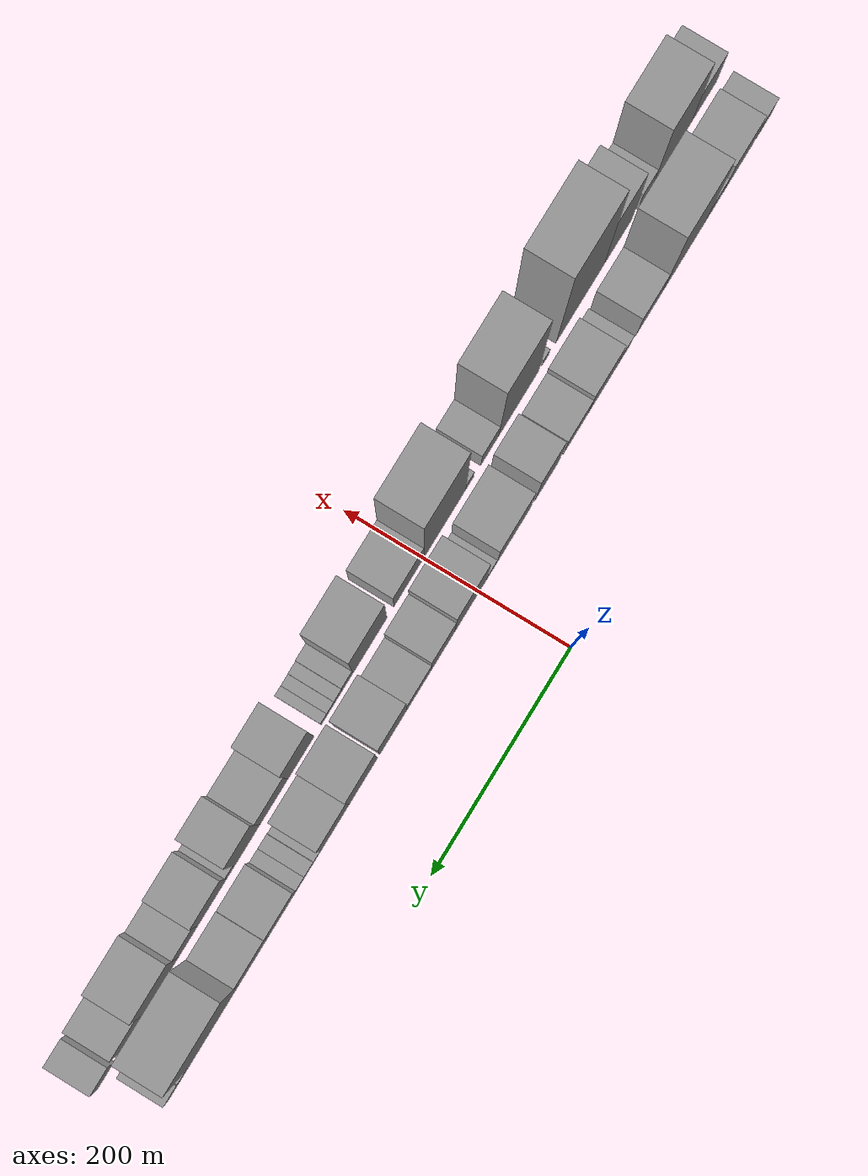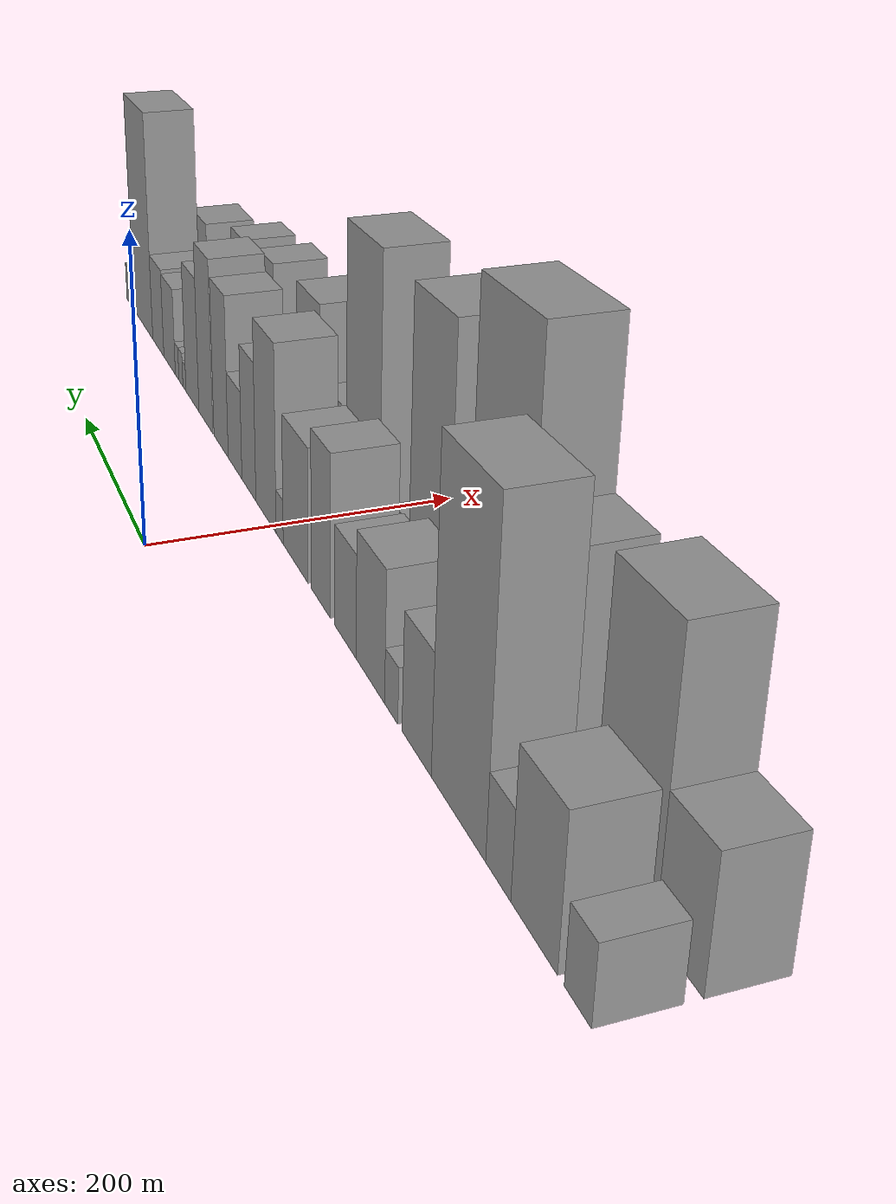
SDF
<sdf version="1.6">
 <world name="default">
  <scene>
   <sky><clouds><speed>12</speed></clouds></sky>
   <ambient>0.4 0.4 0.4 1</ambient>
   <background>0.7 0.7 0.7 1</background>
   <shadows>1</shadows>
  </scene>
  <gravity>0 0 -9.8066</gravity>
  <magnetic_field>6e-06 2.3e-05 -4.2e-05</magnetic_field>
  <physics default="0" name="default_physics" type="ode">
   <ode>
    <solver>
     <type>quick</type>
     <iters>10</iters>
     <sor>1.0</sor>
     <use_dynamic_moi_rescaling>0</use_dynamic_moi_rescaling>
    </solver>
    <constraints>
     <cfm>0</cfm>
     <erp>0.2</erp>
     <contact_max_correcting_vel>100</contact_max_correcting_vel>
     <contact_surface_layer>0.001</contact_surface_layer>
    </constraints>
   </ode>
   <max_step_size>0.004</max_step_size>
   <real_time_factor>1</real_time_factor>
   <real_time_update_rate>250</real_time_update_rate>
  </physics>
  <light name="sun" type="directional">
   <pose>0 0 10 0 0 0</pose>
   <diffuse>0.8 0.8 0.8 1</diffuse>
   <specular>0.2 0.2 0.2 1</specular>
   <attenuation>
    <range>1000</range>
    <constant>0.9</constant>
    <linear>0.01</linear>
    <quadratic>0.001</quadratic>
   </attenuation>
   <direction>-0.5 0.1 -0.9</direction>
  </light>
  <model name="building_1">
   <static>1</static>
   <pose>100.0000 -421.2113 0 0.000000 0.000000 0.000000</pose>
   <link name="link">
    <pose>0 0 21.00 0 0 0</pose>
    <collision name="collision"><geometry><box><size>40.0000 23.5775 42.0000</size></box></geometry></collision>
    <visual name="visual">
     <cast_shadows>0</cast_shadows>
     <geometry><box><size>40.0000 23.5775 42.0000</size></box></geometry>
     <material>
      <script>
       <uri>model://grey_wall/materials/scripts</uri>
       <uri>model://grey_wall/materials/textures</uri>
       <name>vrc/grey_wall</name>
      </script>
     </material>
    </visual>
   </link>
  </model>
  <model name="building_2">
   <static>1</static>
   <pose>100.0000 -380.9293 0 0.000000 0.000000 0.000000</pose>
   <link name="link">
    <pose>0 0 40.50 0 0 0</pose>
    <collision name="collision"><geometry><box><size>40.0000 44.9863 81.0000</size></box></geometry></collision>
    <visual name="visual">
     <cast_shadows>0</cast_shadows>
     <geometry><box><size>40.0000 44.9863 81.0000</size></box></geometry>
     <material>
      <script>
       <uri>model://grey_wall/materials/scripts</uri>
       <uri>model://grey_wall/materials/textures</uri>
       <name>vrc/grey_wall</name>
      </script>
     </material>
    </visual>
   </link>
  </model>
  <model name="building_3">
   <static>1</static>
   <pose>100.0000 -345.1458 0 0.000000 0.000000 0.000000</pose>
   <link name="link">
    <pose>0 0 24.00 0 0 0</pose>
    <collision name="collision"><geometry><box><size>40.0000 26.5807 48.0000</size></box></geometry></collision>
    <visual name="visual">
     <cast_shadows>0</cast_shadows>
     <geometry><box><size>40.0000 26.5807 48.0000</size></box></geometry>
     <material>
      <script>
       <uri>model://grey_wall/materials/scripts</uri>
       <uri>model://grey_wall/materials/textures</uri>
       <name>vrc/grey_wall</name>
      </script>
     </material>
    </visual>
   </link>
  </model>
  <model name="building_4">
   <static>1</static>
   <pose>100.0000 -299.7064 0 0.000000 0.000000 0.000000</pose>
   <link name="link">
    <pose>0 0 91.50 0 0 0</pose>
    <collision name="collision"><geometry><box><size>40.0000 64.2981 183.0000</size></box></geometry></collision>
    <visual name="visual">
     <cast_shadows>0</cast_shadows>
     <geometry><box><size>40.0000 64.2981 183.0000</size></box></geometry>
     <material>
      <script>
       <uri>model://grey_wall/materials/scripts</uri>
       <uri>model://grey_wall/materials/textures</uri>
       <name>vrc/grey_wall</name>
      </script>
     </material>
    </visual>
   </link>
  </model>
  <model name="building_5">
   <static>1</static>
   <pose>100.0000 -248.0408 0 0.000000 0.000000 0.000000</pose>
   <link name="link">
    <pose>0 0 34.50 0 0 0</pose>
    <collision name="collision"><geometry><box><size>40.0000 39.0332 69.0000</size></box></geometry></collision>
    <visual name="visual">
     <cast_shadows>0</cast_shadows>
     <geometry><box><size>40.0000 39.0332 69.0000</size></box></geometry>
     <material>
      <script>
       <uri>model://grey_wall/materials/scripts</uri>
       <uri>model://grey_wall/materials/textures</uri>
       <name>vrc/grey_wall</name>
      </script>
     </material>
    </visual>
   </link>
  </model>
  <model name="building_6">
   <static>1</static>
   <pose>100.0000 -212.9553 0 0.000000 0.000000 0.000000</pose>
   <link name="link">
    <pose>0 0 16.50 0 0 0</pose>
    <collision name="collision"><geometry><box><size>40.0000 19.1377 33.0000</size></box></geometry></collision>
    <visual name="visual">
     <cast_shadows>0</cast_shadows>
     <geometry><box><size>40.0000 19.1377 33.0000</size></box></geometry>
     <material>
      <script>
       <uri>model://grey_wall/materials/scripts</uri>
       <uri>model://grey_wall/materials/textures</uri>
       <name>vrc/grey_wall</name>
      </script>
     </material>
    </visual>
   </link>
  </model>
  <model name="building_7">
   <static>1</static>
   <pose>100.0000 -181.2619 0 0.000000 0.000000 0.000000</pose>
   <link name="link">
    <pose>0 0 39.00 0 0 0</pose>
    <collision name="collision"><geometry><box><size>40.0000 44.2490 78.0000</size></box></geometry></collision>
    <visual name="visual">
     <cast_shadows>0</cast_shadows>
     <geometry><box><size>40.0000 44.2490 78.0000</size></box></geometry>
     <material>
      <script>
       <uri>model://grey_wall/materials/scripts</uri>
       <uri>model://grey_wall/materials/textures</uri>
       <name>vrc/grey_wall</name>
      </script>
     </material>
    </visual>
   </link>
  </model>
  <model name="building_8">
   <static>1</static>
   <pose>100.0000 -141.0431 0 0.000000 0.000000 0.000000</pose>
   <link name="link">
    <pose>0 0 31.50 0 0 0</pose>
    <collision name="collision"><geometry><box><size>40.0000 36.1888 63.0000</size></box></geometry></collision>
    <visual name="visual">
     <cast_shadows>0</cast_shadows>
     <geometry><box><size>40.0000 36.1888 63.0000</size></box></geometry>
     <material>
      <script>
       <uri>model://grey_wall/materials/scripts</uri>
       <uri>model://grey_wall/materials/textures</uri>
       <name>vrc/grey_wall</name>
      </script>
     </material>
    </visual>
   </link>
  </model>
  <model name="building_9">
   <static>1</static>
   <pose>100.0000 -98.4769 0 0.000000 0.000000 0.000000</pose>
   <link name="link">
    <pose>0 0 51.00 0 0 0</pose>
    <collision name="collision"><geometry><box><size>40.0000 34.9436 102.0000</size></box></geometry></collision>
    <visual name="visual">
     <cast_shadows>0</cast_shadows>
     <geometry><box><size>40.0000 34.9436 102.0000</size></box></geometry>
     <material>
      <script>
       <uri>model://grey_wall/materials/scripts</uri>
       <uri>model://grey_wall/materials/textures</uri>
       <name>vrc/grey_wall</name>
      </script>
     </material>
    </visual>
   </link>
  </model>
  <model name="building_10">
   <static>1</static>
   <pose>100.0000 -49.9872 0 0.000000 0.000000 0.000000</pose>
   <link name="link">
    <pose>0 0 43.50 0 0 0</pose>
    <collision name="collision"><geometry><box><size>40.0000 50.0358 87.0000</size></box></geometry></collision>
    <visual name="visual">
     <cast_shadows>0</cast_shadows>
     <geometry><box><size>40.0000 50.0358 87.0000</size></box></geometry>
     <material>
      <script>
       <uri>model://grey_wall/materials/scripts</uri>
       <uri>model://grey_wall/materials/textures</uri>
       <name>vrc/grey_wall</name>
      </script>
     </material>
    </visual>
   </link>
  </model>
  <model name="building_11">
   <static>1</static>
   <pose>100.0000 -17.4245 0 0.000000 0.000000 0.000000</pose>
   <link name="link">
    <pose>0 0 15.00 0 0 0</pose>
    <collision name="collision"><geometry><box><size>40.0000 15.0897 30.0000</size></box></geometry></collision>
    <visual name="visual">
     <cast_shadows>0</cast_shadows>
     <geometry><box><size>40.0000 15.0897 30.0000</size></box></geometry>
     <material>
      <script>
       <uri>model://grey_wall/materials/scripts</uri>
       <uri>model://grey_wall/materials/textures</uri>
       <name>vrc/grey_wall</name>
      </script>
     </material>
    </visual>
   </link>
  </model>
  <model name="building_12">
   <static>1</static>
   <pose>100.0000 12.8642 0 0.000000 0.000000 0.000000</pose>
   <link name="link">
    <pose>0 0 63.00 0 0 0</pose>
    <collision name="collision"><geometry><box><size>40.0000 45.4876 126.0000</size></box></geometry></collision>
    <visual name="visual">
     <cast_shadows>0</cast_shadows>
     <geometry><box><size>40.0000 45.4876 126.0000</size></box></geometry>
     <material>
      <script>
       <uri>model://grey_wall/materials/scripts</uri>
       <uri>model://grey_wall/materials/textures</uri>
       <name>vrc/grey_wall</name>
      </script>
     </material>
    </visual>
   </link>
  </model>
  <model name="building_13">
   <static>1</static>
   <pose>100.0000 52.4269 0 0.000000 0.000000 0.000000</pose>
   <link name="link">
    <pose>0 0 48.00 0 0 0</pose>
    <collision name="collision"><geometry><box><size>40.0000 33.6378 96.0000</size></box></geometry></collision>
    <visual name="visual">
     <cast_shadows>0</cast_shadows>
     <geometry><box><size>40.0000 33.6378 96.0000</size></box></geometry>
     <material>
      <script>
       <uri>model://grey_wall/materials/scripts</uri>
       <uri>model://grey_wall/materials/textures</uri>
       <name>vrc/grey_wall</name>
      </script>
     </material>
    </visual>
   </link>
  </model>
  <model name="building_14">
   <static>1</static>
   <pose>100.0000 86.7150 0 0.000000 0.000000 0.000000</pose>
   <link name="link">
    <pose>0 0 31.50 0 0 0</pose>
    <collision name="collision"><geometry><box><size>40.0000 34.9383 63.0000</size></box></geometry></collision>
    <visual name="visual">
     <cast_shadows>0</cast_shadows>
     <geometry><box><size>40.0000 34.9383 63.0000</size></box></geometry>
     <material>
      <script>
       <uri>model://grey_wall/materials/scripts</uri>
       <uri>model://grey_wall/materials/textures</uri>
       <name>vrc/grey_wall</name>
      </script>
     </material>
    </visual>
   </link>
  </model>
  <model name="building_15">
   <static>1</static>
   <pose>100.0000 123.4704 0 0.000000 0.000000 0.000000</pose>
   <link name="link">
    <pose>0 0 58.50 0 0 0</pose>
    <collision name="collision"><geometry><box><size>40.0000 38.5726 117.0000</size></box></geometry></collision>
    <visual name="visual">
     <cast_shadows>0</cast_shadows>
     <geometry><box><size>40.0000 38.5726 117.0000</size></box></geometry>
     <material>
      <script>
       <uri>model://grey_wall/materials/scripts</uri>
       <uri>model://grey_wall/materials/textures</uri>
       <name>vrc/grey_wall</name>
      </script>
     </material>
    </visual>
   </link>
  </model>
  <model name="building_16">
   <static>1</static>
   <pose>100.0000 165.8754 0 0.000000 0.000000 0.000000</pose>
   <link name="link">
    <pose>0 0 64.50 0 0 0</pose>
    <collision name="collision"><geometry><box><size>40.0000 40.2373 129.0000</size></box></geometry></collision>
    <visual name="visual">
     <cast_shadows>0</cast_shadows>
     <geometry><box><size>40.0000 40.2373 129.0000</size></box></geometry>
     <material>
      <script>
       <uri>model://grey_wall/materials/scripts</uri>
       <uri>model://grey_wall/materials/textures</uri>
       <name>vrc/grey_wall</name>
      </script>
     </material>
    </visual>
   </link>
  </model>
  <model name="building_17">
   <static>1</static>
   <pose>100.0000 206.0309 0 0.000000 0.000000 0.000000</pose>
   <link name="link">
    <pose>0 0 51.00 0 0 0</pose>
    <collision name="collision"><geometry><box><size>40.0000 40.0737 102.0000</size></box></geometry></collision>
    <visual name="visual">
     <cast_shadows>0</cast_shadows>
     <geometry><box><size>40.0000 40.0737 102.0000</size></box></geometry>
     <material>
      <script>
       <uri>model://grey_wall/materials/scripts</uri>
       <uri>model://grey_wall/materials/textures</uri>
       <name>vrc/grey_wall</name>
      </script>
     </material>
    </visual>
   </link>
  </model>
  <model name="building_18">
   <static>1</static>
   <pose>100.0000 231.0367 0 0.000000 0.000000 0.000000</pose>
   <link name="link">
    <pose>0 0 10.50 0 0 0</pose>
    <collision name="collision"><geometry><box><size>40.0000 9.9379 21.0000</size></box></geometry></collision>
    <visual name="visual">
     <cast_shadows>0</cast_shadows>
     <geometry><box><size>40.0000 9.9379 21.0000</size></box></geometry>
     <material>
      <script>
       <uri>model://grey_wall/materials/scripts</uri>
       <uri>model://grey_wall/materials/textures</uri>
       <name>vrc/grey_wall</name>
      </script>
     </material>
    </visual>
   </link>
  </model>
  <model name="building_19">
   <static>1</static>
   <pose>100.0000 242.3863 0 0.000000 0.000000 0.000000</pose>
   <link name="link">
    <pose>0 0 13.50 0 0 0</pose>
    <collision name="collision"><geometry><box><size>40.0000 12.7612 27.0000</size></box></geometry></collision>
    <visual name="visual">
     <cast_shadows>0</cast_shadows>
     <geometry><box><size>40.0000 12.7612 27.0000</size></box></geometry>
     <material>
      <script>
       <uri>model://grey_wall/materials/scripts</uri>
       <uri>model://grey_wall/materials/textures</uri>
       <name>vrc/grey_wall</name>
      </script>
     </material>
    </visual>
   </link>
  </model>
  <model name="building_20">
   <static>1</static>
   <pose>100.0000 254.7174 0 0.000000 0.000000 0.000000</pose>
   <link name="link">
    <pose>0 0 13.50 0 0 0</pose>
    <collision name="collision"><geometry><box><size>40.0000 11.9011 27.0000</size></box></geometry></collision>
    <visual name="visual">
     <cast_shadows>0</cast_shadows>
     <geometry><box><size>40.0000 11.9011 27.0000</size></box></geometry>
     <material>
      <script>
       <uri>model://grey_wall/materials/scripts</uri>
       <uri>model://grey_wall/materials/textures</uri>
       <name>vrc/grey_wall</name>
      </script>
     </material>
    </visual>
   </link>
  </model>
  <model name="building_21">
   <static>1</static>
   <pose>100.0000 280.2527 0 0.000000 0.000000 0.000000</pose>
   <link name="link">
    <pose>0 0 34.50 0 0 0</pose>
    <collision name="collision"><geometry><box><size>40.0000 39.1695 69.0000</size></box></geometry></collision>
    <visual name="visual">
     <cast_shadows>0</cast_shadows>
     <geometry><box><size>40.0000 39.1695 69.0000</size></box></geometry>
     <material>
      <script>
       <uri>model://grey_wall/materials/scripts</uri>
       <uri>model://grey_wall/materials/textures</uri>
       <name>vrc/grey_wall</name>
      </script>
     </material>
    </visual>
   </link>
  </model>
  <model name="building_22">
   <static>1</static>
   <pose>100.0000 319.8653 0 0.000000 0.000000 0.000000</pose>
   <link name="link">
    <pose>0 0 36.00 0 0 0</pose>
    <collision name="collision"><geometry><box><size>40.0000 40.0557 72.0000</size></box></geometry></collision>
    <visual name="visual">
     <cast_shadows>0</cast_shadows>
     <geometry><box><size>40.0000 40.0557 72.0000</size></box></geometry>
     <material>
      <script>
       <uri>model://grey_wall/materials/scripts</uri>
       <uri>model://grey_wall/materials/textures</uri>
       <name>vrc/grey_wall</name>
      </script>
     </material>
    </visual>
   </link>
  </model>
  <model name="building_23">
   <static>1</static>
   <pose>100.0000 376.1777 0 0.000000 0.000000 0.000000</pose>
   <link name="link">
    <pose>0 0 93.00 0 0 0</pose>
    <collision name="collision"><geometry><box><size>40.0000 72.5691 186.0000</size></box></geometry></collision>
    <visual name="visual">
     <cast_shadows>0</cast_shadows>
     <geometry><box><size>40.0000 72.5691 186.0000</size></box></geometry>
     <material>
      <script>
       <uri>model://grey_wall/materials/scripts</uri>
       <uri>model://grey_wall/materials/textures</uri>
       <name>vrc/grey_wall</name>
      </script>
     </material>
    </visual>
   </link>
  </model>
  <model name="building_24">
   <static>1</static>
   <pose>100.0000 418.3078 0 0.000000 0.000000 0.000000</pose>
   <link name="link">
    <pose>0 0 13.50 0 0 0</pose>
    <collision name="collision"><geometry><box><size>40.0000 11.6911 27.0000</size></box></geometry></collision>
    <visual name="visual">
     <cast_shadows>0</cast_shadows>
     <geometry><box><size>40.0000 11.6911 27.0000</size></box></geometry>
     <material>
      <script>
       <uri>model://grey_wall/materials/scripts</uri>
       <uri>model://grey_wall/materials/textures</uri>
       <name>vrc/grey_wall</name>
      </script>
     </material>
    </visual>
   </link>
  </model>
  <model name="building_25">
   <static>1</static>
   <pose>100.0000 433.3633 0 0.000000 0.000000 0.000000</pose>
   <link name="link">
    <pose>0 0 16.50 0 0 0</pose>
    <collision name="collision"><geometry><box><size>40.0000 18.4199 33.0000</size></box></geometry></collision>
    <visual name="visual">
     <cast_shadows>0</cast_shadows>
     <geometry><box><size>40.0000 18.4199 33.0000</size></box></geometry>
     <material>
      <script>
       <uri>model://grey_wall/materials/scripts</uri>
       <uri>model://grey_wall/materials/textures</uri>
       <name>vrc/grey_wall</name>
      </script>
     </material>
    </visual>
   </link>
  </model>
  <model name="building_26">
   <static>1</static>
   <pose>149.0000 -413.7615 0 0.000000 0.000000 0.000000</pose>
   <link name="link">
    <pose>0 0 36.00 0 0 0</pose>
    <collision name="collision"><geometry><box><size>40.0000 38.4770 72.0000</size></box></geometry></collision>
    <visual name="visual">
     <cast_shadows>0</cast_shadows>
     <geometry><box><size>40.0000 38.4770 72.0000</size></box></geometry>
     <material>
      <script>
       <uri>model://grey_wall/materials/scripts</uri>
       <uri>model://grey_wall/materials/textures</uri>
       <name>vrc/grey_wall</name>
      </script>
     </material>
    </visual>
   </link>
  </model>
  <model name="building_27">
   <static>1</static>
   <pose>149.0000 -365.9560 0 0.000000 0.000000 0.000000</pose>
   <link name="link">
    <pose>0 0 75.00 0 0 0</pose>
    <collision name="collision"><geometry><box><size>40.0000 57.1341 150.0000</size></box></geometry></collision>
    <visual name="visual">
     <cast_shadows>0</cast_shadows>
     <geometry><box><size>40.0000 57.1341 150.0000</size></box></geometry>
     <material>
      <script>
       <uri>model://grey_wall/materials/scripts</uri>
       <uri>model://grey_wall/materials/textures</uri>
       <name>vrc/grey_wall</name>
      </script>
     </material>
    </visual>
   </link>
  </model>
  <model name="building_28">
   <static>1</static>
   <pose>149.0000 -326.1045 0 0.000000 0.000000 0.000000</pose>
   <link name="link">
    <pose>0 0 22.50 0 0 0</pose>
    <collision name="collision"><geometry><box><size>40.0000 22.5690 45.0000</size></box></geometry></collision>
    <visual name="visual">
     <cast_shadows>0</cast_shadows>
     <geometry><box><size>40.0000 22.5690 45.0000</size></box></geometry>
     <material>
      <script>
       <uri>model://grey_wall/materials/scripts</uri>
       <uri>model://grey_wall/materials/textures</uri>
       <name>vrc/grey_wall</name>
      </script>
     </material>
    </visual>
   </link>
  </model>
  <model name="building_29">
   <static>1</static>
   <pose>149.0000 -284.9412 0 0.000000 0.000000 0.000000</pose>
   <link name="link">
    <pose>0 0 67.50 0 0 0</pose>
    <collision name="collision"><geometry><box><size>40.0000 41.7576 135.0000</size></box></geometry></collision>
    <visual name="visual">
     <cast_shadows>0</cast_shadows>
     <geometry><box><size>40.0000 41.7576 135.0000</size></box></geometry>
     <material>
      <script>
       <uri>model://grey_wall/materials/scripts</uri>
       <uri>model://grey_wall/materials/textures</uri>
       <name>vrc/grey_wall</name>
      </script>
     </material>
    </visual>
   </link>
  </model>
  <model name="building_30">
   <static>1</static>
   <pose>149.0000 -228.6244 0 0.000000 0.000000 0.000000</pose>
   <link name="link">
    <pose>0 0 112.50 0 0 0</pose>
    <collision name="collision"><geometry><box><size>40.0000 70.8759 225.0000</size></box></geometry></collision>
    <visual name="visual">
     <cast_shadows>0</cast_shadows>
     <geometry><box><size>40.0000 70.8759 225.0000</size></box></geometry>
     <material>
      <script>
       <uri>model://grey_wall/materials/scripts</uri>
       <uri>model://grey_wall/materials/textures</uri>
       <name>vrc/grey_wall</name>
      </script>
     </material>
    </visual>
   </link>
  </model>
  <model name="building_31">
   <static>1</static>
   <pose>149.0000 -178.0951 0 0.000000 0.000000 0.000000</pose>
   <link name="link">
    <pose>0 0 10.50 0 0 0</pose>
    <collision name="collision"><geometry><box><size>40.0000 10.1827 21.0000</size></box></geometry></collision>
    <visual name="visual">
     <cast_shadows>0</cast_shadows>
     <geometry><box><size>40.0000 10.1827 21.0000</size></box></geometry>
     <material>
      <script>
       <uri>model://grey_wall/materials/scripts</uri>
       <uri>model://grey_wall/materials/textures</uri>
       <name>vrc/grey_wall</name>
      </script>
     </material>
    </visual>
   </link>
  </model>
  <model name="building_32">
   <static>1</static>
   <pose>149.0000 -138.4369 0 0.000000 0.000000 0.000000</pose>
   <link name="link">
    <pose>0 0 96.00 0 0 0</pose>
    <collision name="collision"><geometry><box><size>40.0000 59.1337 192.0000</size></box></geometry></collision>
    <visual name="visual">
     <cast_shadows>0</cast_shadows>
     <geometry><box><size>40.0000 59.1337 192.0000</size></box></geometry>
     <material>
      <script>
       <uri>model://grey_wall/materials/scripts</uri>
       <uri>model://grey_wall/materials/textures</uri>
       <name>vrc/grey_wall</name>
      </script>
     </material>
    </visual>
   </link>
  </model>
  <model name="building_33">
   <static>1</static>
   <pose>149.0000 -95.9197 0 0.000000 0.000000 0.000000</pose>
   <link name="link">
    <pose>0 0 24.00 0 0 0</pose>
    <collision name="collision"><geometry><box><size>40.0000 25.9006 48.0000</size></box></geometry></collision>
    <visual name="visual">
     <cast_shadows>0</cast_shadows>
     <geometry><box><size>40.0000 25.9006 48.0000</size></box></geometry>
     <material>
      <script>
       <uri>model://grey_wall/materials/scripts</uri>
       <uri>model://grey_wall/materials/textures</uri>
       <name>vrc/grey_wall</name>
      </script>
     </material>
    </visual>
   </link>
  </model>
  <model name="building_34">
   <static>1</static>
   <pose>149.0000 -66.9706 0 0.000000 0.000000 0.000000</pose>
   <link name="link">
    <pose>0 0 13.50 0 0 0</pose>
    <collision name="collision"><geometry><box><size>40.0000 11.9977 27.0000</size></box></geometry></collision>
    <visual name="visual">
     <cast_shadows>0</cast_shadows>
     <geometry><box><size>40.0000 11.9977 27.0000</size></box></geometry>
     <material>
      <script>
       <uri>model://grey_wall/materials/scripts</uri>
       <uri>model://grey_wall/materials/textures</uri>
       <name>vrc/grey_wall</name>
      </script>
     </material>
    </visual>
   </link>
  </model>
  <model name="building_35">
   <static>1</static>
   <pose>149.0000 -30.5515 0 0.000000 0.000000 0.000000</pose>
   <link name="link">
    <pose>0 0 97.50 0 0 0</pose>
    <collision name="collision"><geometry><box><size>40.0000 60.8404 195.0000</size></box></geometry></collision>
    <visual name="visual">
     <cast_shadows>0</cast_shadows>
     <geometry><box><size>40.0000 60.8404 195.0000</size></box></geometry>
     <material>
      <script>
       <uri>model://grey_wall/materials/scripts</uri>
       <uri>model://grey_wall/materials/textures</uri>
       <name>vrc/grey_wall</name>
      </script>
     </material>
    </visual>
   </link>
  </model>
  <model name="building_36">
   <static>1</static>
   <pose>149.0000 21.3845 0 0.000000 0.000000 0.000000</pose>
   <link name="link">
    <pose>0 0 36.00 0 0 0</pose>
    <collision name="collision"><geometry><box><size>40.0000 43.0317 72.0000</size></box></geometry></collision>
    <visual name="visual">
     <cast_shadows>0</cast_shadows>
     <geometry><box><size>40.0000 43.0317 72.0000</size></box></geometry>
     <material>
      <script>
       <uri>model://grey_wall/materials/scripts</uri>
       <uri>model://grey_wall/materials/textures</uri>
       <name>vrc/grey_wall</name>
      </script>
     </material>
    </visual>
   </link>
  </model>
  <model name="building_37">
   <static>1</static>
   <pose>149.0000 77.2973 0 0.000000 0.000000 0.000000</pose>
   <link name="link">
    <pose>0 0 61.50 0 0 0</pose>
    <collision name="collision"><geometry><box><size>40.0000 48.7939 123.0000</size></box></geometry></collision>
    <visual name="visual">
     <cast_shadows>0</cast_shadows>
     <geometry><box><size>40.0000 48.7939 123.0000</size></box></geometry>
     <material>
      <script>
       <uri>model://grey_wall/materials/scripts</uri>
       <uri>model://grey_wall/materials/textures</uri>
       <name>vrc/grey_wall</name>
      </script>
     </material>
    </visual>
   </link>
  </model>
  <model name="building_38">
   <static>1</static>
   <pose>149.0000 109.2500 0 0.000000 0.000000 0.000000</pose>
   <link name="link">
    <pose>0 0 15.00 0 0 0</pose>
    <collision name="collision"><geometry><box><size>40.0000 15.1116 30.0000</size></box></geometry></collision>
    <visual name="visual">
     <cast_shadows>0</cast_shadows>
     <geometry><box><size>40.0000 15.1116 30.0000</size></box></geometry>
     <material>
      <script>
       <uri>model://grey_wall/materials/scripts</uri>
       <uri>model://grey_wall/materials/textures</uri>
       <name>vrc/grey_wall</name>
      </script>
     </material>
    </visual>
   </link>
  </model>
  <model name="building_39">
   <static>1</static>
   <pose>149.0000 122.2734 0 0.000000 0.000000 0.000000</pose>
   <link name="link">
    <pose>0 0 12.00 0 0 0</pose>
    <collision name="collision"><geometry><box><size>40.0000 10.9351 24.0000</size></box></geometry></collision>
    <visual name="visual">
     <cast_shadows>0</cast_shadows>
     <geometry><box><size>40.0000 10.9351 24.0000</size></box></geometry>
     <material>
      <script>
       <uri>model://grey_wall/materials/scripts</uri>
       <uri>model://grey_wall/materials/textures</uri>
       <name>vrc/grey_wall</name>
      </script>
     </material>
    </visual>
   </link>
  </model>
  <model name="building_40">
   <static>1</static>
   <pose>149.0000 132.8944 0 0.000000 0.000000 0.000000</pose>
   <link name="link">
    <pose>0 0 10.50 0 0 0</pose>
    <collision name="collision"><geometry><box><size>40.0000 10.3069 21.0000</size></box></geometry></collision>
    <visual name="visual">
     <cast_shadows>0</cast_shadows>
     <geometry><box><size>40.0000 10.3069 21.0000</size></box></geometry>
     <material>
      <script>
       <uri>model://grey_wall/materials/scripts</uri>
       <uri>model://grey_wall/materials/textures</uri>
       <name>vrc/grey_wall</name>
      </script>
     </material>
    </visual>
   </link>
  </model>
  <model name="building_41">
   <static>1</static>
   <pose>149.0000 142.4673 0 0.000000 0.000000 0.000000</pose>
   <link name="link">
    <pose>0 0 10.50 0 0 0</pose>
    <collision name="collision"><geometry><box><size>40.0000 8.8389 21.0000</size></box></geometry></collision>
    <visual name="visual">
     <cast_shadows>0</cast_shadows>
     <geometry><box><size>40.0000 8.8389 21.0000</size></box></geometry>
     <material>
      <script>
       <uri>model://grey_wall/materials/scripts</uri>
       <uri>model://grey_wall/materials/textures</uri>
       <name>vrc/grey_wall</name>
      </script>
     </material>
    </visual>
   </link>
  </model>
  <model name="building_42">
   <static>1</static>
   <pose>149.0000 175.4946 0 0.000000 0.000000 0.000000</pose>
   <link name="link">
    <pose>0 0 58.50 0 0 0</pose>
    <collision name="collision"><geometry><box><size>40.0000 37.2157 117.0000</size></box></geometry></collision>
    <visual name="visual">
     <cast_shadows>0</cast_shadows>
     <geometry><box><size>40.0000 37.2157 117.0000</size></box></geometry>
     <material>
      <script>
       <uri>model://grey_wall/materials/scripts</uri>
       <uri>model://grey_wall/materials/textures</uri>
       <name>vrc/grey_wall</name>
      </script>
     </material>
    </visual>
   </link>
  </model>
  <model name="building_43">
   <static>1</static>
   <pose>149.0000 213.9067 0 0.000000 0.000000 0.000000</pose>
   <link name="link">
    <pose>0 0 36.00 0 0 0</pose>
    <collision name="collision"><geometry><box><size>40.0000 39.6085 72.0000</size></box></geometry></collision>
    <visual name="visual">
     <cast_shadows>0</cast_shadows>
     <geometry><box><size>40.0000 39.6085 72.0000</size></box></geometry>
     <material>
      <script>
       <uri>model://grey_wall/materials/scripts</uri>
       <uri>model://grey_wall/materials/textures</uri>
       <name>vrc/grey_wall</name>
      </script>
     </material>
    </visual>
   </link>
  </model>
  <model name="building_44">
   <static>1</static>
   <pose>149.0000 251.4720 0 0.000000 0.000000 0.000000</pose>
   <link name="link">
    <pose>0 0 55.50 0 0 0</pose>
    <collision name="collision"><geometry><box><size>40.0000 35.5220 111.0000</size></box></geometry></collision>
    <visual name="visual">
     <cast_shadows>0</cast_shadows>
     <geometry><box><size>40.0000 35.5220 111.0000</size></box></geometry>
     <material>
      <script>
       <uri>model://grey_wall/materials/scripts</uri>
       <uri>model://grey_wall/materials/textures</uri>
       <name>vrc/grey_wall</name>
      </script>
     </material>
    </visual>
   </link>
  </model>
  <model name="building_45">
   <static>1</static>
   <pose>149.0000 274.7376 0 0.000000 0.000000 0.000000</pose>
   <link name="link">
    <pose>0 0 13.50 0 0 0</pose>
    <collision name="collision"><geometry><box><size>40.0000 11.0093 27.0000</size></box></geometry></collision>
    <visual name="visual">
     <cast_shadows>0</cast_shadows>
     <geometry><box><size>40.0000 11.0093 27.0000</size></box></geometry>
     <material>
      <script>
       <uri>model://grey_wall/materials/scripts</uri>
       <uri>model://grey_wall/materials/textures</uri>
       <name>vrc/grey_wall</name>
      </script>
     </material>
    </visual>
   </link>
  </model>
  <model name="building_46">
   <static>1</static>
   <pose>149.0000 300.7227 0 0.000000 0.000000 0.000000</pose>
   <link name="link">
    <pose>0 0 36.00 0 0 0</pose>
    <collision name="collision"><geometry><box><size>40.0000 40.9609 72.0000</size></box></geometry></collision>
    <visual name="visual">
     <cast_shadows>0</cast_shadows>
     <geometry><box><size>40.0000 40.9609 72.0000</size></box></geometry>
     <material>
      <script>
       <uri>model://grey_wall/materials/scripts</uri>
       <uri>model://grey_wall/materials/textures</uri>
       <name>vrc/grey_wall</name>
      </script>
     </material>
    </visual>
   </link>
  </model>
  <model name="building_47">
   <static>1</static>
   <pose>149.0000 334.7737 0 0.000000 0.000000 0.000000</pose>
   <link name="link">
    <pose>0 0 27.00 0 0 0</pose>
    <collision name="collision"><geometry><box><size>40.0000 27.1410 54.0000</size></box></geometry></collision>
    <visual name="visual">
     <cast_shadows>0</cast_shadows>
     <geometry><box><size>40.0000 27.1410 54.0000</size></box></geometry>
     <material>
      <script>
       <uri>model://grey_wall/materials/scripts</uri>
       <uri>model://grey_wall/materials/textures</uri>
       <name>vrc/grey_wall</name>
      </script>
     </material>
    </visual>
   </link>
  </model>
  <model name="building_48">
   <static>1</static>
   <pose>149.0000 372.8308 0 0.000000 0.000000 0.000000</pose>
   <link name="link">
    <pose>0 0 45.00 0 0 0</pose>
    <collision name="collision"><geometry><box><size>40.0000 48.9732 90.0000</size></box></geometry></collision>
    <visual name="visual">
     <cast_shadows>0</cast_shadows>
     <geometry><box><size>40.0000 48.9732 90.0000</size></box></geometry>
     <material>
      <script>
       <uri>model://grey_wall/materials/scripts</uri>
       <uri>model://grey_wall/materials/textures</uri>
       <name>vrc/grey_wall</name>
      </script>
     </material>
    </visual>
   </link>
  </model>
  <model name="building_49">
   <static>1</static>
   <pose>149.0000 414.2090 0 0.000000 0.000000 0.000000</pose>
   <link name="link">
    <pose>0 0 30.00 0 0 0</pose>
    <collision name="collision"><geometry><box><size>40.0000 33.7832 60.0000</size></box></geometry></collision>
    <visual name="visual">
     <cast_shadows>0</cast_shadows>
     <geometry><box><size>40.0000 33.7832 60.0000</size></box></geometry>
     <material>
      <script>
       <uri>model://grey_wall/materials/scripts</uri>
       <uri>model://grey_wall/materials/textures</uri>
       <name>vrc/grey_wall</name>
      </script>
     </material>
    </visual>
   </link>
  </model>
  <model name="building_50">
   <static>1</static>
   <pose>149.0000 450.2238 0 0.000000 0.000000 0.000000</pose>
   <link name="link">
    <pose>0 0 21.00 0 0 0</pose>
    <collision name="collision"><geometry><box><size>40.0000 24.2465 42.0000</size></box></geometry></collision>
    <visual name="visual">
     <cast_shadows>0</cast_shadows>
     <geometry><box><size>40.0000 24.2465 42.0000</size></box></geometry>
     <material>
      <script>
       <uri>model://grey_wall/materials/scripts</uri>
       <uri>model://grey_wall/materials/textures</uri>
       <name>vrc/grey_wall</name>
      </script>
     </material>
    </visual>
   </link>
  </model>
 </world>
</sdf>
